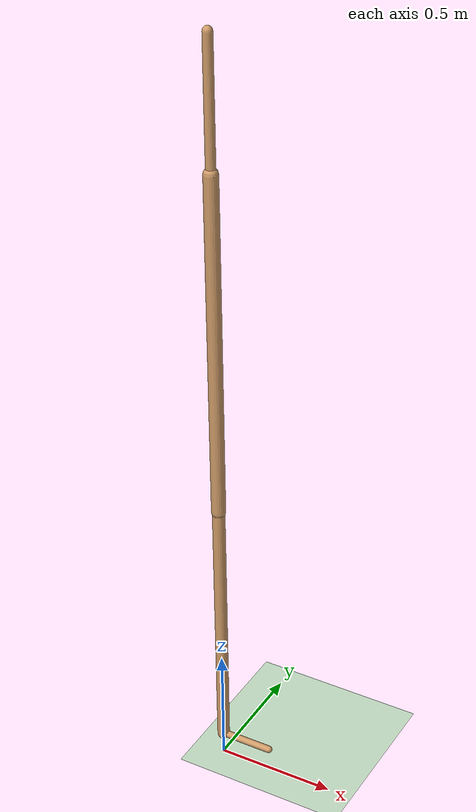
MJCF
<mujoco model="walker2d">
  <compiler angle="degree" inertiafromgeom="true" />
  <default>
    <joint armature="0.01" damping=".1" limited="true" />
    <geom conaffinity="0" condim="3" contype="1" density="1000" friction=".7 .1 .1" rgba="0.8 0.6 .4 1" />
  </default>
  <option integrator="RK4" timestep="0.002" />
  <worldbody>
    <light cutoff="100" diffuse="1 1 1" dir="-0 0 -1.3" directional="true" exponent="1" pos="0 0 1.3" specular=".1 .1 .1" />
    <geom conaffinity="1" condim="3" name="floor" pos="0 0 0" rgba="0.8 0.9 0.8 1" size="40 40 40" type="plane" material="MatPlane" />
    <body name="torso" pos="0 0 2.8960884869098664">
      <camera name="track" mode="trackcom" pos="0 -5 -1.25" xyaxes="1 0 0 0 0 1" />
      <joint armature="0" axis="1 0 0" damping="0" limited="false" name="rootx" pos="0 0 -1.25" stiffness="0" type="slide" />
      <joint armature="0" axis="0 0 1" damping="0" limited="false" name="rootz" pos="0 0 -1.25" ref="1.25" stiffness="0" type="slide" />
      <joint armature="0" axis="0 1 0" damping="0" limited="false" name="rooty" pos="0 0 0" stiffness="0" type="hinge" />
      <geom friction="0.9" name="torso_geom" size="0.018970418721437454 0.2546270191669464" type="capsule" />
      <body name="thigh" pos="0 0 -0.2546270191669464">
        <joint axis="0 -1 0" name="thigh_joint" pos="0 0 0" range="-150 0" type="hinge" />
        <site name="torso_thigh_site" pos="0 0 0" size="0.01" type="sphere" rgba="1 0 0 0.5" />
        <geom friction="0.9" pos="0 0 -0.704833447933197" name="thigh_geom" size="0.028542393818497658 0.704833447933197" type="capsule" />
        <body name="leg" pos="0 0 -1.975564181804657">
          <joint axis="0 -1 0" name="leg_joint" pos="0 0 0.5658972859382629" range="-150 0" type="hinge" />
          <site name="thigh_leg_site" pos="0 0 0.25" size="0.01" type="sphere" rgba="1 0 0 0.5" />
          <geom friction="0.9" name="leg_geom" size="0.025395812466740608 0.5658972859382629" type="capsule" />
          <body name="foot" pos="0.2179798185825348 0 -0.6658972859382629">
            <joint axis="0 -1 0" name="foot_joint" pos="-0.2179798185825348 0 0.1" range="-45 45" type="hinge" />
            <site name="leg_foot_site" pos="-0.2 0 0.1" size="0.01" type="sphere" rgba="1 0 0 0.5" />
            <geom friction="0.9" pos="-0.1089899092912674 0 0.1" quat="0.70710678118654757 0 -0.70710678118654746 0" name="foot_geom" size="0.01487263385206461 0.1089899092912674" type="capsule" />
          </body>
        </body>
      </body>

      <body name="thigh_left" pos="0 0 -0.2546270191669464">
        <joint axis="0 -1 0" name="thigh_left_joint" pos="0 0 0" range="-150 0" type="hinge" />
        <site name="torso_thigh_left_site" pos="0 0 0" size="0.01" type="sphere" rgba="1 0 0 0.5" />
        <geom friction="0.9" name="thigh_left_geom" rgba=".7 .3 .6 1" size="0.028542393818497658 0.704833447933197" pos="0 0 -0.704833447933197" type="capsule" />
        <body name="leg_left" pos="0 0 -1.975564181804657">
          <joint axis="0 -1 0" name="leg_left_joint" pos="0 0 0.5658972859382629" range="-150 0" type="hinge" />
          <site name="thigh_leg_left_site" pos="0 0 0.25" size="0.01" type="sphere" rgba="1 0 0 0.5" />
          <geom friction="0.9" name="leg_left_geom" rgba=".7 .3 .6 1" size="0.025395812466740608 0.5658972859382629" type="capsule" />
          <body name="foot_left" pos="0.2179798185825348 0 -0.6658972859382629">
            <joint axis="0 -1 0" name="foot_left_joint" pos="-0.2179798185825348 0 0.1" range="-45 45" type="hinge" />
            <site name="leg_foot_left_site" pos="-0.2 0 0.1" size="0.01" type="sphere" rgba="1 0 0 0.5" />
            <geom friction="1.9" name="foot_left_geom" rgba=".7 .3 .6 1" size="0.01487263385206461 0.1089899092912674" pos="-0.1089899092912674 0 0.1" type="capsule" quat="0.70710678118654757 0 -0.70710678118654746 0" />
          </body>
        </body>
      </body>
    </body>
  </worldbody>
  <actuator>

    <motor ctrllimited="true" ctrlrange="-1.0 1.0" gear="102.08096497202757" joint="thigh_joint" />
    <motor ctrllimited="true" ctrlrange="-1.0 1.0" gear="91.24348036572658" joint="leg_joint" />
    <motor ctrllimited="true" ctrlrange="-1.0 1.0" gear="6.696680247866493" joint="foot_joint" />
    <motor ctrllimited="true" ctrlrange="-1.0 1.0" gear="102.08096497202757" joint="thigh_left_joint" />
    <motor ctrllimited="true" ctrlrange="-1.0 1.0" gear="91.24348036572658" joint="leg_left_joint" />
    <motor ctrllimited="true" ctrlrange="-1.0 1.0" gear="6.696680247866493" joint="foot_left_joint" />

  </actuator>
    <asset>
        <texture type="skybox" builtin="gradient" rgb1=".4 .5 .6" rgb2="0 0 0" width="100" height="100" />
        <texture builtin="flat" height="1278" mark="cross" markrgb="1 1 1" name="texgeom" random="0.01" rgb1="0.8 0.6 0.4" rgb2="0.8 0.6 0.4" type="cube" width="127" />
        <texture builtin="checker" height="100" name="texplane" rgb1="0 0 0" rgb2="0.8 0.8 0.8" type="2d" width="100" />
        <material name="MatPlane" reflectance="0.5" shininess="1" specular="1" texrepeat="60 60" texture="texplane" />
        <material name="geom" texture="texgeom" texuniform="true" />
    </asset>

  <sensor>
    <force site="torso_thigh_site" name="torso_thigh_sensor" />
    <force site="thigh_leg_site" name="thigh_leg_sensor" />
    <force site="leg_foot_site" name="leg_foot_sensor" />
    <force site="torso_thigh_left_site" name="torso_thigh_left_sensor" />
    <force site="thigh_leg_left_site" name="thigh_leg_left_sensor" />
    <force site="leg_foot_left_site" name="leg_foot_left_sensor" />
  </sensor>
</mujoco>
